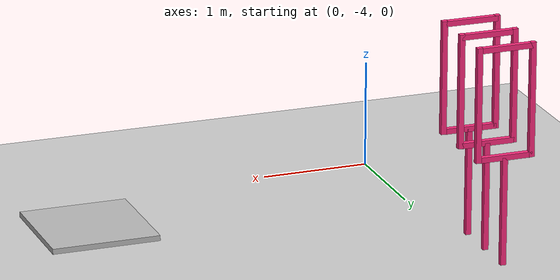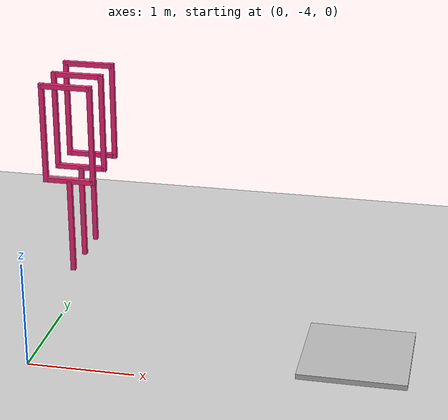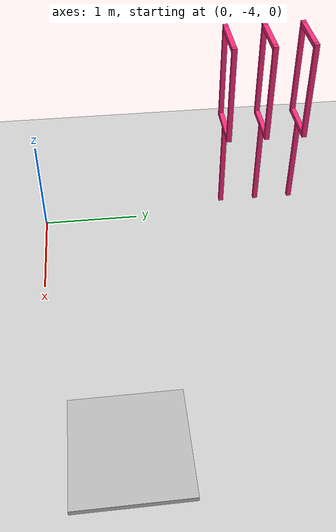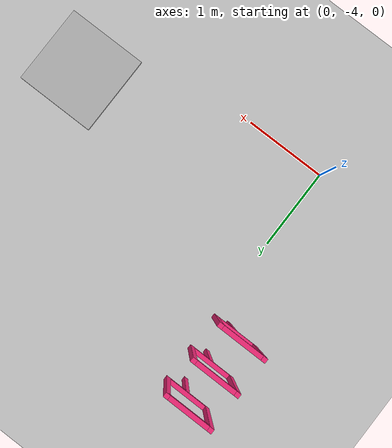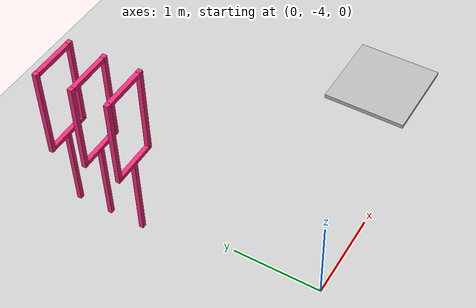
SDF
<sdf version="1.7">
 <world name="default">
  <model name="ground_plane">
   <static>1</static>
   <link name="link">
    <collision name="collision">
     <geometry><plane><normal>0 0 1</normal><size>100 100</size></plane></geometry>
     <surface><friction><ode><mu>100</mu><mu2>50</mu2></ode></friction></surface>
    </collision>
    <visual name="visual">
     <cast_shadows>0</cast_shadows>
     <geometry><plane><normal>0 0 1</normal><size>100 100</size></plane></geometry>
     <material>
      <script><uri>file://media/materials/scripts/gazebo.material</uri><name>Gazebo/Grey</name></script>
     </material>
    </visual>
   </link>
  </model>
  <model name="small_gate_9">
   <link name="rod">
    <pose>0 0 0.5 0 -0 0</pose>
    <inertial>
     <mass>1</mass>
     <inertia>
      <ixx>0.166667</ixx>
      <ixy>0</ixy>
      <ixz>0</ixz>
      <iyy>0.166667</iyy>
      <iyz>0</iyz>
      <izz>0.166667</izz>
     </inertia>
    </inertial>
    <visual name="visual">
     <geometry><box><size>0.05 0.05 1</size></box></geometry>
     <material>
      <shader type="vertex"><normal_map>__default__</normal_map></shader>
      <ambient>0.978 0.164 0.484 1</ambient>
      <diffuse>0.978 0.164 0.484 1</diffuse>
      <specular>0.01 0.01 0.01 1</specular>
      <emissive>0 0 0 1</emissive>
     </material>
    </visual>
    <collision name="collision">
     <geometry><box><size>0.05 0.05 1</size></box></geometry>
     <surface>
      <friction>
       <ode><mu>1</mu><mu2>1</mu2><fdir1>0 0 0</fdir1><slip1>0</slip1><slip2>0</slip2></ode>
       <torsional>
        <coefficient>1</coefficient>
        <patch_radius>0</patch_radius>
        <surface_radius>0</surface_radius>
        <use_patch_radius>1</use_patch_radius>
        <ode><slip>0</slip></ode>
       </torsional>
      </friction>
      <bounce><restitution_coefficient>0</restitution_coefficient><threshold>1e+06</threshold></bounce>
      <contact>
       <collide_without_contact>0</collide_without_contact>
       <collide_without_contact_bitmask>1</collide_without_contact_bitmask>
       <collide_bitmask>1</collide_bitmask>
       <ode>
        <soft_cfm>0</soft_cfm>
        <soft_erp>0.2</soft_erp>
        <kp>1e+13</kp>
        <kd>1</kd>
        <max_vel>0.01</max_vel>
        <min_depth>0</min_depth>
       </ode>
       <bullet>
        <split_impulse>1</split_impulse>
        <split_impulse_penetration_threshold>-0.01</split_impulse_penetration_threshold>
        <soft_cfm>0</soft_cfm>
        <soft_erp>0.2</soft_erp>
        <kp>1e+13</kp>
        <kd>1</kd>
       </bullet>
      </contact>
     </surface>
    </collision>
   </link>
   <link name="top_edge">
    <pose>0 0 2 0 -0 0</pose>
    <inertial>
     <mass>1</mass>
     <inertia>
      <ixx>0.166667</ixx>
      <ixy>0</ixy>
      <ixz>0</ixz>
      <iyy>0.166667</iyy>
      <iyz>0</iyz>
      <izz>0.166667</izz>
     </inertia>
    </inertial>
    <visual name="visual">
     <geometry><box><size>0.5 0.05 0.05</size></box></geometry>
     <material>
      <shader type="vertex"><normal_map>__default__</normal_map></shader>
      <ambient>0.978 0.164 0.484 1</ambient>
      <diffuse>0.978 0.164 0.484 1</diffuse>
      <specular>0.01 0.01 0.01 1</specular>
      <emissive>0 0 0 1</emissive>
     </material>
    </visual>
    <collision name="collision">
     <geometry><box><size>0.5 0.05 0.05</size></box></geometry>
     <surface>
      <friction>
       <ode><mu>1</mu><mu2>1</mu2><fdir1>0 0 0</fdir1><slip1>0</slip1><slip2>0</slip2></ode>
       <torsional>
        <coefficient>1</coefficient>
        <patch_radius>0</patch_radius>
        <surface_radius>0</surface_radius>
        <use_patch_radius>1</use_patch_radius>
        <ode><slip>0</slip></ode>
       </torsional>
      </friction>
      <bounce><restitution_coefficient>0</restitution_coefficient><threshold>1e+06</threshold></bounce>
      <contact>
       <collide_without_contact>0</collide_without_contact>
       <collide_without_contact_bitmask>1</collide_without_contact_bitmask>
       <collide_bitmask>1</collide_bitmask>
       <ode>
        <soft_cfm>0</soft_cfm>
        <soft_erp>0.2</soft_erp>
        <kp>1e+13</kp>
        <kd>1</kd>
        <max_vel>0.01</max_vel>
        <min_depth>0</min_depth>
       </ode>
       <bullet>
        <split_impulse>1</split_impulse>
        <split_impulse_penetration_threshold>-0.01</split_impulse_penetration_threshold>
        <soft_cfm>0</soft_cfm>
        <soft_erp>0.2</soft_erp>
        <kp>1e+13</kp>
        <kd>1</kd>
       </bullet>
      </contact>
     </surface>
    </collision>
   </link>
   <link name="bottom_edge">
    <pose>0 0 1 0 -0 0</pose>
    <inertial>
     <mass>1</mass>
     <inertia>
      <ixx>0.166667</ixx>
      <ixy>0</ixy>
      <ixz>0</ixz>
      <iyy>0.166667</iyy>
      <iyz>0</iyz>
      <izz>0.166667</izz>
     </inertia>
    </inertial>
    <visual name="visual">
     <geometry><box><size>0.5 0.05 0.05</size></box></geometry>
     <material>
      <shader type="vertex"><normal_map>__default__</normal_map></shader>
      <ambient>0.978 0.164 0.484 1</ambient>
      <diffuse>0.978 0.164 0.484 1</diffuse>
      <specular>0.01 0.01 0.01 1</specular>
      <emissive>0 0 0 1</emissive>
     </material>
    </visual>
    <collision name="collision">
     <geometry><box><size>0.5 0.05 0.05</size></box></geometry>
     <surface>
      <friction>
       <ode><mu>1</mu><mu2>1</mu2><fdir1>0 0 0</fdir1><slip1>0</slip1><slip2>0</slip2></ode>
       <torsional>
        <coefficient>1</coefficient>
        <patch_radius>0</patch_radius>
        <surface_radius>0</surface_radius>
        <use_patch_radius>1</use_patch_radius>
        <ode><slip>0</slip></ode>
       </torsional>
      </friction>
      <bounce><restitution_coefficient>0</restitution_coefficient><threshold>1e+06</threshold></bounce>
      <contact>
       <collide_without_contact>0</collide_without_contact>
       <collide_without_contact_bitmask>1</collide_without_contact_bitmask>
       <collide_bitmask>1</collide_bitmask>
       <ode>
        <soft_cfm>0</soft_cfm>
        <soft_erp>0.2</soft_erp>
        <kp>1e+13</kp>
        <kd>1</kd>
        <max_vel>0.01</max_vel>
        <min_depth>0</min_depth>
       </ode>
       <bullet>
        <split_impulse>1</split_impulse>
        <split_impulse_penetration_threshold>-0.01</split_impulse_penetration_threshold>
        <soft_cfm>0</soft_cfm>
        <soft_erp>0.2</soft_erp>
        <kp>1e+13</kp>
        <kd>1</kd>
       </bullet>
      </contact>
     </surface>
    </collision>
   </link>
   <link name="left_edge">
    <pose>-0.25 0 1.502 0 -0 0</pose>
    <inertial>
     <mass>1</mass>
     <inertia>
      <ixx>0.166667</ixx>
      <ixy>0</ixy>
      <ixz>0</ixz>
      <iyy>0.166667</iyy>
      <iyz>0</iyz>
      <izz>0.166667</izz>
     </inertia>
    </inertial>
    <visual name="visual">
     <geometry><box><size>0.05 0.05 1.05</size></box></geometry>
     <material>
      <shader type="vertex"><normal_map>__default__</normal_map></shader>
      <ambient>0.978 0.164 0.484 1</ambient>
      <diffuse>0.978 0.164 0.484 1</diffuse>
      <specular>0.01 0.01 0.01 1</specular>
      <emissive>0 0 0 1</emissive>
     </material>
    </visual>
    <collision name="collision">
     <geometry><box><size>0.05 0.05 1.05</size></box></geometry>
     <surface>
      <friction>
       <ode><mu>1</mu><mu2>1</mu2><fdir1>0 0 0</fdir1><slip1>0</slip1><slip2>0</slip2></ode>
       <torsional>
        <coefficient>1</coefficient>
        <patch_radius>0</patch_radius>
        <surface_radius>0</surface_radius>
        <use_patch_radius>1</use_patch_radius>
        <ode><slip>0</slip></ode>
       </torsional>
      </friction>
      <bounce><restitution_coefficient>0</restitution_coefficient><threshold>1e+06</threshold></bounce>
      <contact>
       <collide_without_contact>0</collide_without_contact>
       <collide_without_contact_bitmask>1</collide_without_contact_bitmask>
       <collide_bitmask>1</collide_bitmask>
       <ode>
        <soft_cfm>0</soft_cfm>
        <soft_erp>0.2</soft_erp>
        <kp>1e+13</kp>
        <kd>1</kd>
        <max_vel>0.01</max_vel>
        <min_depth>0</min_depth>
       </ode>
       <bullet>
        <split_impulse>1</split_impulse>
        <split_impulse_penetration_threshold>-0.01</split_impulse_penetration_threshold>
        <soft_cfm>0</soft_cfm>
        <soft_erp>0.2</soft_erp>
        <kp>1e+13</kp>
        <kd>1</kd>
       </bullet>
      </contact>
     </surface>
    </collision>
   </link>
   <link name="right_edge">
    <pose>0.25 0 1.502 0 -0 0</pose>
    <inertial>
     <mass>1</mass>
     <inertia>
      <ixx>0.166667</ixx>
      <ixy>0</ixy>
      <ixz>0</ixz>
      <iyy>0.166667</iyy>
      <iyz>0</iyz>
      <izz>0.166667</izz>
     </inertia>
    </inertial>
    <visual name="visual">
     <geometry><box><size>0.05 0.05 1.05</size></box></geometry>
     <material>
      <shader type="vertex"><normal_map>__default__</normal_map></shader>
      <ambient>0.978 0.164 0.484 1</ambient>
      <diffuse>0.978 0.164 0.484 1</diffuse>
      <specular>0.01 0.01 0.01 1</specular>
      <emissive>0 0 0 1</emissive>
     </material>
    </visual>
    <collision name="collision">
     <geometry><box><size>0.05 0.05 1.05</size></box></geometry>
     <surface>
      <friction>
       <ode><mu>1</mu><mu2>1</mu2><fdir1>0 0 0</fdir1><slip1>0</slip1><slip2>0</slip2></ode>
       <torsional>
        <coefficient>1</coefficient>
        <patch_radius>0</patch_radius>
        <surface_radius>0</surface_radius>
        <use_patch_radius>1</use_patch_radius>
        <ode><slip>0</slip></ode>
       </torsional>
      </friction>
      <bounce><restitution_coefficient>0</restitution_coefficient><threshold>1e+06</threshold></bounce>
      <contact>
       <collide_without_contact>0</collide_without_contact>
       <collide_without_contact_bitmask>1</collide_without_contact_bitmask>
       <collide_bitmask>1</collide_bitmask>
       <ode>
        <soft_cfm>0</soft_cfm>
        <soft_erp>0.2</soft_erp>
        <kp>1e+13</kp>
        <kd>1</kd>
        <max_vel>0.01</max_vel>
        <min_depth>0</min_depth>
       </ode>
       <bullet>
        <split_impulse>1</split_impulse>
        <split_impulse_penetration_threshold>-0.01</split_impulse_penetration_threshold>
        <soft_cfm>0</soft_cfm>
        <soft_erp>0.2</soft_erp>
        <kp>1e+13</kp>
        <kd>1</kd>
       </bullet>
      </contact>
     </surface>
    </collision>
   </link>
   <static>1</static>
   <pose>-0.2 -2 0 0 -0 0</pose>
  </model>
  <model name="small_gate_10">
   <link name="rod">
    <pose>0 0 0.5 0 -0 0</pose>
    <inertial>
     <mass>1</mass>
     <inertia>
      <ixx>0.166667</ixx>
      <ixy>0</ixy>
      <ixz>0</ixz>
      <iyy>0.166667</iyy>
      <iyz>0</iyz>
      <izz>0.166667</izz>
     </inertia>
    </inertial>
    <visual name="visual">
     <geometry><box><size>0.05 0.05 1</size></box></geometry>
     <material>
      <shader type="vertex"><normal_map>__default__</normal_map></shader>
      <ambient>0.978 0.164 0.484 1</ambient>
      <diffuse>0.978 0.164 0.484 1</diffuse>
      <specular>0.01 0.01 0.01 1</specular>
      <emissive>0 0 0 1</emissive>
     </material>
    </visual>
    <collision name="collision">
     <geometry><box><size>0.05 0.05 1</size></box></geometry>
     <surface>
      <friction>
       <ode><mu>1</mu><mu2>1</mu2><fdir1>0 0 0</fdir1><slip1>0</slip1><slip2>0</slip2></ode>
       <torsional>
        <coefficient>1</coefficient>
        <patch_radius>0</patch_radius>
        <surface_radius>0</surface_radius>
        <use_patch_radius>1</use_patch_radius>
        <ode><slip>0</slip></ode>
       </torsional>
      </friction>
      <bounce><restitution_coefficient>0</restitution_coefficient><threshold>1e+06</threshold></bounce>
      <contact>
       <collide_without_contact>0</collide_without_contact>
       <collide_without_contact_bitmask>1</collide_without_contact_bitmask>
       <collide_bitmask>1</collide_bitmask>
       <ode>
        <soft_cfm>0</soft_cfm>
        <soft_erp>0.2</soft_erp>
        <kp>1e+13</kp>
        <kd>1</kd>
        <max_vel>0.01</max_vel>
        <min_depth>0</min_depth>
       </ode>
       <bullet>
        <split_impulse>1</split_impulse>
        <split_impulse_penetration_threshold>-0.01</split_impulse_penetration_threshold>
        <soft_cfm>0</soft_cfm>
        <soft_erp>0.2</soft_erp>
        <kp>1e+13</kp>
        <kd>1</kd>
       </bullet>
      </contact>
     </surface>
    </collision>
   </link>
   <link name="top_edge">
    <pose>0 0 2 0 -0 0</pose>
    <inertial>
     <mass>1</mass>
     <inertia>
      <ixx>0.166667</ixx>
      <ixy>0</ixy>
      <ixz>0</ixz>
      <iyy>0.166667</iyy>
      <iyz>0</iyz>
      <izz>0.166667</izz>
     </inertia>
    </inertial>
    <visual name="visual">
     <geometry><box><size>0.5 0.05 0.05</size></box></geometry>
     <material>
      <shader type="vertex"><normal_map>__default__</normal_map></shader>
      <ambient>0.978 0.164 0.484 1</ambient>
      <diffuse>0.978 0.164 0.484 1</diffuse>
      <specular>0.01 0.01 0.01 1</specular>
      <emissive>0 0 0 1</emissive>
     </material>
    </visual>
    <collision name="collision">
     <geometry><box><size>0.5 0.05 0.05</size></box></geometry>
     <surface>
      <friction>
       <ode><mu>1</mu><mu2>1</mu2><fdir1>0 0 0</fdir1><slip1>0</slip1><slip2>0</slip2></ode>
       <torsional>
        <coefficient>1</coefficient>
        <patch_radius>0</patch_radius>
        <surface_radius>0</surface_radius>
        <use_patch_radius>1</use_patch_radius>
        <ode><slip>0</slip></ode>
       </torsional>
      </friction>
      <bounce><restitution_coefficient>0</restitution_coefficient><threshold>1e+06</threshold></bounce>
      <contact>
       <collide_without_contact>0</collide_without_contact>
       <collide_without_contact_bitmask>1</collide_without_contact_bitmask>
       <collide_bitmask>1</collide_bitmask>
       <ode>
        <soft_cfm>0</soft_cfm>
        <soft_erp>0.2</soft_erp>
        <kp>1e+13</kp>
        <kd>1</kd>
        <max_vel>0.01</max_vel>
        <min_depth>0</min_depth>
       </ode>
       <bullet>
        <split_impulse>1</split_impulse>
        <split_impulse_penetration_threshold>-0.01</split_impulse_penetration_threshold>
        <soft_cfm>0</soft_cfm>
        <soft_erp>0.2</soft_erp>
        <kp>1e+13</kp>
        <kd>1</kd>
       </bullet>
      </contact>
     </surface>
    </collision>
   </link>
   <link name="bottom_edge">
    <pose>0 0 1 0 -0 0</pose>
    <inertial>
     <mass>1</mass>
     <inertia>
      <ixx>0.166667</ixx>
      <ixy>0</ixy>
      <ixz>0</ixz>
      <iyy>0.166667</iyy>
      <iyz>0</iyz>
      <izz>0.166667</izz>
     </inertia>
    </inertial>
    <visual name="visual">
     <geometry><box><size>0.5 0.05 0.05</size></box></geometry>
     <material>
      <shader type="vertex"><normal_map>__default__</normal_map></shader>
      <ambient>0.978 0.164 0.484 1</ambient>
      <diffuse>0.978 0.164 0.484 1</diffuse>
      <specular>0.01 0.01 0.01 1</specular>
      <emissive>0 0 0 1</emissive>
     </material>
    </visual>
    <collision name="collision">
     <geometry><box><size>0.5 0.05 0.05</size></box></geometry>
     <surface>
      <friction>
       <ode><mu>1</mu><mu2>1</mu2><fdir1>0 0 0</fdir1><slip1>0</slip1><slip2>0</slip2></ode>
       <torsional>
        <coefficient>1</coefficient>
        <patch_radius>0</patch_radius>
        <surface_radius>0</surface_radius>
        <use_patch_radius>1</use_patch_radius>
        <ode><slip>0</slip></ode>
       </torsional>
      </friction>
      <bounce><restitution_coefficient>0</restitution_coefficient><threshold>1e+06</threshold></bounce>
      <contact>
       <collide_without_contact>0</collide_without_contact>
       <collide_without_contact_bitmask>1</collide_without_contact_bitmask>
       <collide_bitmask>1</collide_bitmask>
       <ode>
        <soft_cfm>0</soft_cfm>
        <soft_erp>0.2</soft_erp>
        <kp>1e+13</kp>
        <kd>1</kd>
        <max_vel>0.01</max_vel>
        <min_depth>0</min_depth>
       </ode>
       <bullet>
        <split_impulse>1</split_impulse>
        <split_impulse_penetration_threshold>-0.01</split_impulse_penetration_threshold>
        <soft_cfm>0</soft_cfm>
        <soft_erp>0.2</soft_erp>
        <kp>1e+13</kp>
        <kd>1</kd>
       </bullet>
      </contact>
     </surface>
    </collision>
   </link>
   <link name="left_edge">
    <pose>-0.25 0 1.502 0 -0 0</pose>
    <inertial>
     <mass>1</mass>
     <inertia>
      <ixx>0.166667</ixx>
      <ixy>0</ixy>
      <ixz>0</ixz>
      <iyy>0.166667</iyy>
      <iyz>0</iyz>
      <izz>0.166667</izz>
     </inertia>
    </inertial>
    <visual name="visual">
     <geometry><box><size>0.05 0.05 1.05</size></box></geometry>
     <material>
      <shader type="vertex"><normal_map>__default__</normal_map></shader>
      <ambient>0.978 0.164 0.484 1</ambient>
      <diffuse>0.978 0.164 0.484 1</diffuse>
      <specular>0.01 0.01 0.01 1</specular>
      <emissive>0 0 0 1</emissive>
     </material>
    </visual>
    <collision name="collision">
     <geometry><box><size>0.05 0.05 1.05</size></box></geometry>
     <surface>
      <friction>
       <ode><mu>1</mu><mu2>1</mu2><fdir1>0 0 0</fdir1><slip1>0</slip1><slip2>0</slip2></ode>
       <torsional>
        <coefficient>1</coefficient>
        <patch_radius>0</patch_radius>
        <surface_radius>0</surface_radius>
        <use_patch_radius>1</use_patch_radius>
        <ode><slip>0</slip></ode>
       </torsional>
      </friction>
      <bounce><restitution_coefficient>0</restitution_coefficient><threshold>1e+06</threshold></bounce>
      <contact>
       <collide_without_contact>0</collide_without_contact>
       <collide_without_contact_bitmask>1</collide_without_contact_bitmask>
       <collide_bitmask>1</collide_bitmask>
       <ode>
        <soft_cfm>0</soft_cfm>
        <soft_erp>0.2</soft_erp>
        <kp>1e+13</kp>
        <kd>1</kd>
        <max_vel>0.01</max_vel>
        <min_depth>0</min_depth>
       </ode>
       <bullet>
        <split_impulse>1</split_impulse>
        <split_impulse_penetration_threshold>-0.01</split_impulse_penetration_threshold>
        <soft_cfm>0</soft_cfm>
        <soft_erp>0.2</soft_erp>
        <kp>1e+13</kp>
        <kd>1</kd>
       </bullet>
      </contact>
     </surface>
    </collision>
   </link>
   <link name="right_edge">
    <pose>0.25 0 1.502 0 -0 0</pose>
    <inertial>
     <mass>1</mass>
     <inertia>
      <ixx>0.166667</ixx>
      <ixy>0</ixy>
      <ixz>0</ixz>
      <iyy>0.166667</iyy>
      <iyz>0</iyz>
      <izz>0.166667</izz>
     </inertia>
    </inertial>
    <visual name="visual">
     <geometry><box><size>0.05 0.05 1.05</size></box></geometry>
     <material>
      <shader type="vertex"><normal_map>__default__</normal_map></shader>
      <ambient>0.978 0.164 0.484 1</ambient>
      <diffuse>0.978 0.164 0.484 1</diffuse>
      <specular>0.01 0.01 0.01 1</specular>
      <emissive>0 0 0 1</emissive>
     </material>
    </visual>
    <collision name="collision">
     <geometry><box><size>0.05 0.05 1.05</size></box></geometry>
     <surface>
      <friction>
       <ode><mu>1</mu><mu2>1</mu2><fdir1>0 0 0</fdir1><slip1>0</slip1><slip2>0</slip2></ode>
       <torsional>
        <coefficient>1</coefficient>
        <patch_radius>0</patch_radius>
        <surface_radius>0</surface_radius>
        <use_patch_radius>1</use_patch_radius>
        <ode><slip>0</slip></ode>
       </torsional>
      </friction>
      <bounce><restitution_coefficient>0</restitution_coefficient><threshold>1e+06</threshold></bounce>
      <contact>
       <collide_without_contact>0</collide_without_contact>
       <collide_without_contact_bitmask>1</collide_without_contact_bitmask>
       <collide_bitmask>1</collide_bitmask>
       <ode>
        <soft_cfm>0</soft_cfm>
        <soft_erp>0.2</soft_erp>
        <kp>1e+13</kp>
        <kd>1</kd>
        <max_vel>0.01</max_vel>
        <min_depth>0</min_depth>
       </ode>
       <bullet>
        <split_impulse>1</split_impulse>
        <split_impulse_penetration_threshold>-0.01</split_impulse_penetration_threshold>
        <soft_cfm>0</soft_cfm>
        <soft_erp>0.2</soft_erp>
        <kp>1e+13</kp>
        <kd>1</kd>
       </bullet>
      </contact>
     </surface>
    </collision>
   </link>
   <static>1</static>
   <pose>-0.2 -1.6 0 0 -0 0</pose>
  </model>
  <model name="small_gate_11">
   <link name="rod">
    <pose>0 0 0.5 0 -0 0</pose>
    <inertial>
     <mass>1</mass>
     <inertia>
      <ixx>0.166667</ixx>
      <ixy>0</ixy>
      <ixz>0</ixz>
      <iyy>0.166667</iyy>
      <iyz>0</iyz>
      <izz>0.166667</izz>
     </inertia>
    </inertial>
    <visual name="visual">
     <geometry><box><size>0.05 0.05 1</size></box></geometry>
     <material>
      <shader type="vertex"><normal_map>__default__</normal_map></shader>
      <ambient>0.978 0.164 0.484 1</ambient>
      <diffuse>0.978 0.164 0.484 1</diffuse>
      <specular>0.01 0.01 0.01 1</specular>
      <emissive>0 0 0 1</emissive>
     </material>
    </visual>
    <collision name="collision">
     <geometry><box><size>0.05 0.05 1</size></box></geometry>
     <surface>
      <friction>
       <ode><mu>1</mu><mu2>1</mu2><fdir1>0 0 0</fdir1><slip1>0</slip1><slip2>0</slip2></ode>
       <torsional>
        <coefficient>1</coefficient>
        <patch_radius>0</patch_radius>
        <surface_radius>0</surface_radius>
        <use_patch_radius>1</use_patch_radius>
        <ode><slip>0</slip></ode>
       </torsional>
      </friction>
      <bounce><restitution_coefficient>0</restitution_coefficient><threshold>1e+06</threshold></bounce>
      <contact>
       <collide_without_contact>0</collide_without_contact>
       <collide_without_contact_bitmask>1</collide_without_contact_bitmask>
       <collide_bitmask>1</collide_bitmask>
       <ode>
        <soft_cfm>0</soft_cfm>
        <soft_erp>0.2</soft_erp>
        <kp>1e+13</kp>
        <kd>1</kd>
        <max_vel>0.01</max_vel>
        <min_depth>0</min_depth>
       </ode>
       <bullet>
        <split_impulse>1</split_impulse>
        <split_impulse_penetration_threshold>-0.01</split_impulse_penetration_threshold>
        <soft_cfm>0</soft_cfm>
        <soft_erp>0.2</soft_erp>
        <kp>1e+13</kp>
        <kd>1</kd>
       </bullet>
      </contact>
     </surface>
    </collision>
   </link>
   <link name="top_edge">
    <pose>0 0 2 0 -0 0</pose>
    <inertial>
     <mass>1</mass>
     <inertia>
      <ixx>0.166667</ixx>
      <ixy>0</ixy>
      <ixz>0</ixz>
      <iyy>0.166667</iyy>
      <iyz>0</iyz>
      <izz>0.166667</izz>
     </inertia>
    </inertial>
    <visual name="visual">
     <geometry><box><size>0.5 0.05 0.05</size></box></geometry>
     <material>
      <shader type="vertex"><normal_map>__default__</normal_map></shader>
      <ambient>0.978 0.164 0.484 1</ambient>
      <diffuse>0.978 0.164 0.484 1</diffuse>
      <specular>0.01 0.01 0.01 1</specular>
      <emissive>0 0 0 1</emissive>
     </material>
    </visual>
    <collision name="collision">
     <geometry><box><size>0.5 0.05 0.05</size></box></geometry>
     <surface>
      <friction>
       <ode><mu>1</mu><mu2>1</mu2><fdir1>0 0 0</fdir1><slip1>0</slip1><slip2>0</slip2></ode>
       <torsional>
        <coefficient>1</coefficient>
        <patch_radius>0</patch_radius>
        <surface_radius>0</surface_radius>
        <use_patch_radius>1</use_patch_radius>
        <ode><slip>0</slip></ode>
       </torsional>
      </friction>
      <bounce><restitution_coefficient>0</restitution_coefficient><threshold>1e+06</threshold></bounce>
      <contact>
       <collide_without_contact>0</collide_without_contact>
       <collide_without_contact_bitmask>1</collide_without_contact_bitmask>
       <collide_bitmask>1</collide_bitmask>
       <ode>
        <soft_cfm>0</soft_cfm>
        <soft_erp>0.2</soft_erp>
        <kp>1e+13</kp>
        <kd>1</kd>
        <max_vel>0.01</max_vel>
        <min_depth>0</min_depth>
       </ode>
       <bullet>
        <split_impulse>1</split_impulse>
        <split_impulse_penetration_threshold>-0.01</split_impulse_penetration_threshold>
        <soft_cfm>0</soft_cfm>
        <soft_erp>0.2</soft_erp>
        <kp>1e+13</kp>
        <kd>1</kd>
       </bullet>
      </contact>
     </surface>
    </collision>
   </link>
   <link name="bottom_edge">
    <pose>0 0 1 0 -0 0</pose>
    <inertial>
     <mass>1</mass>
     <inertia>
      <ixx>0.166667</ixx>
      <ixy>0</ixy>
      <ixz>0</ixz>
      <iyy>0.166667</iyy>
      <iyz>0</iyz>
      <izz>0.166667</izz>
     </inertia>
    </inertial>
    <visual name="visual">
     <geometry><box><size>0.5 0.05 0.05</size></box></geometry>
     <material>
      <shader type="vertex"><normal_map>__default__</normal_map></shader>
      <ambient>0.978 0.164 0.484 1</ambient>
      <diffuse>0.978 0.164 0.484 1</diffuse>
      <specular>0.01 0.01 0.01 1</specular>
      <emissive>0 0 0 1</emissive>
     </material>
    </visual>
    <collision name="collision">
     <geometry><box><size>0.5 0.05 0.05</size></box></geometry>
     <surface>
      <friction>
       <ode><mu>1</mu><mu2>1</mu2><fdir1>0 0 0</fdir1><slip1>0</slip1><slip2>0</slip2></ode>
       <torsional>
        <coefficient>1</coefficient>
        <patch_radius>0</patch_radius>
        <surface_radius>0</surface_radius>
        <use_patch_radius>1</use_patch_radius>
        <ode><slip>0</slip></ode>
       </torsional>
      </friction>
      <bounce><restitution_coefficient>0</restitution_coefficient><threshold>1e+06</threshold></bounce>
      <contact>
       <collide_without_contact>0</collide_without_contact>
       <collide_without_contact_bitmask>1</collide_without_contact_bitmask>
       <collide_bitmask>1</collide_bitmask>
       <ode>
        <soft_cfm>0</soft_cfm>
        <soft_erp>0.2</soft_erp>
        <kp>1e+13</kp>
        <kd>1</kd>
        <max_vel>0.01</max_vel>
        <min_depth>0</min_depth>
       </ode>
       <bullet>
        <split_impulse>1</split_impulse>
        <split_impulse_penetration_threshold>-0.01</split_impulse_penetration_threshold>
        <soft_cfm>0</soft_cfm>
        <soft_erp>0.2</soft_erp>
        <kp>1e+13</kp>
        <kd>1</kd>
       </bullet>
      </contact>
     </surface>
    </collision>
   </link>
   <link name="left_edge">
    <pose>-0.25 0 1.502 0 -0 0</pose>
    <inertial>
     <mass>1</mass>
     <inertia>
      <ixx>0.166667</ixx>
      <ixy>0</ixy>
      <ixz>0</ixz>
      <iyy>0.166667</iyy>
      <iyz>0</iyz>
      <izz>0.166667</izz>
     </inertia>
    </inertial>
    <visual name="visual">
     <geometry><box><size>0.05 0.05 1.05</size></box></geometry>
     <material>
      <shader type="vertex"><normal_map>__default__</normal_map></shader>
      <ambient>0.978 0.164 0.484 1</ambient>
      <diffuse>0.978 0.164 0.484 1</diffuse>
      <specular>0.01 0.01 0.01 1</specular>
      <emissive>0 0 0 1</emissive>
     </material>
    </visual>
    <collision name="collision">
     <geometry><box><size>0.05 0.05 1.05</size></box></geometry>
     <surface>
      <friction>
       <ode><mu>1</mu><mu2>1</mu2><fdir1>0 0 0</fdir1><slip1>0</slip1><slip2>0</slip2></ode>
       <torsional>
        <coefficient>1</coefficient>
        <patch_radius>0</patch_radius>
        <surface_radius>0</surface_radius>
        <use_patch_radius>1</use_patch_radius>
        <ode><slip>0</slip></ode>
       </torsional>
      </friction>
      <bounce><restitution_coefficient>0</restitution_coefficient><threshold>1e+06</threshold></bounce>
      <contact>
       <collide_without_contact>0</collide_without_contact>
       <collide_without_contact_bitmask>1</collide_without_contact_bitmask>
       <collide_bitmask>1</collide_bitmask>
       <ode>
        <soft_cfm>0</soft_cfm>
        <soft_erp>0.2</soft_erp>
        <kp>1e+13</kp>
        <kd>1</kd>
        <max_vel>0.01</max_vel>
        <min_depth>0</min_depth>
       </ode>
       <bullet>
        <split_impulse>1</split_impulse>
        <split_impulse_penetration_threshold>-0.01</split_impulse_penetration_threshold>
        <soft_cfm>0</soft_cfm>
        <soft_erp>0.2</soft_erp>
        <kp>1e+13</kp>
        <kd>1</kd>
       </bullet>
      </contact>
     </surface>
    </collision>
   </link>
   <link name="right_edge">
    <pose>0.25 0 1.502 0 -0 0</pose>
    <inertial>
     <mass>1</mass>
     <inertia>
      <ixx>0.166667</ixx>
      <ixy>0</ixy>
      <ixz>0</ixz>
      <iyy>0.166667</iyy>
      <iyz>0</iyz>
      <izz>0.166667</izz>
     </inertia>
    </inertial>
    <visual name="visual">
     <geometry><box><size>0.05 0.05 1.05</size></box></geometry>
     <material>
      <shader type="vertex"><normal_map>__default__</normal_map></shader>
      <ambient>0.978 0.164 0.484 1</ambient>
      <diffuse>0.978 0.164 0.484 1</diffuse>
      <specular>0.01 0.01 0.01 1</specular>
      <emissive>0 0 0 1</emissive>
     </material>
    </visual>
    <collision name="collision">
     <geometry><box><size>0.05 0.05 1.05</size></box></geometry>
     <surface>
      <friction>
       <ode><mu>1</mu><mu2>1</mu2><fdir1>0 0 0</fdir1><slip1>0</slip1><slip2>0</slip2></ode>
       <torsional>
        <coefficient>1</coefficient>
        <patch_radius>0</patch_radius>
        <surface_radius>0</surface_radius>
        <use_patch_radius>1</use_patch_radius>
        <ode><slip>0</slip></ode>
       </torsional>
      </friction>
      <bounce><restitution_coefficient>0</restitution_coefficient><threshold>1e+06</threshold></bounce>
      <contact>
       <collide_without_contact>0</collide_without_contact>
       <collide_without_contact_bitmask>1</collide_without_contact_bitmask>
       <collide_bitmask>1</collide_bitmask>
       <ode>
        <soft_cfm>0</soft_cfm>
        <soft_erp>0.2</soft_erp>
        <kp>1e+13</kp>
        <kd>1</kd>
        <max_vel>0.01</max_vel>
        <min_depth>0</min_depth>
       </ode>
       <bullet>
        <split_impulse>1</split_impulse>
        <split_impulse_penetration_threshold>-0.01</split_impulse_penetration_threshold>
        <soft_cfm>0</soft_cfm>
        <soft_erp>0.2</soft_erp>
        <kp>1e+13</kp>
        <kd>1</kd>
       </bullet>
      </contact>
     </surface>
    </collision>
   </link>
   <static>1</static>
   <pose>-0.2 -1.2 0 0 -0 0</pose>
  </model>
  <model name="landing-sign-moving">
   <static>0</static>
   <pose>2.92991 -3.27434 0.025 0 -0 0</pose>
   <allow_auto_disable>0</allow_auto_disable>
   <link name="link">
    <gravity>0</gravity>
    <kinematic>1</kinematic>
    <inertial>
     <mass>5</mass>
     <inertia>
      <ixx>0.417708</ixx>
      <iyy>0.417708</iyy>
      <izz>0.833333</izz>
      <ixy>0</ixy>
      <ixz>0</ixz>
      <iyz>0</iyz>
     </inertia>
    </inertial>
    <collision name="collision">
     <geometry><box><size>1 1 0.05</size></box></geometry>
     <surface>
      <contact><collide_bitmask>65535</collide_bitmask></contact>
      <friction><ode><mu>1</mu><mu2>1</mu2><slip1>0</slip1><slip2>0</slip2></ode></friction>
     </surface>
    </collision>
    <visual name="visual">
     <geometry><box><size>1 1 0.05</size></box></geometry>
     <material>
      <script>
       <uri>model://landing-sign/materials/scripts/landing.material</uri>
       <name>Gazebo/LandingPlatform</name>
      </script>
     </material>
    </visual>
    <plugin name="moving_platform" filename="libmoving_platform_plugin.so">
     <link_name>link</link_name>
     <axis>y</axis>
     <amplitude>1</amplitude>
     <max_speed>0.5</max_speed>
     <center>0 0 0</center>
    </plugin>
   </link>
  </model>
 </world>
</sdf>
